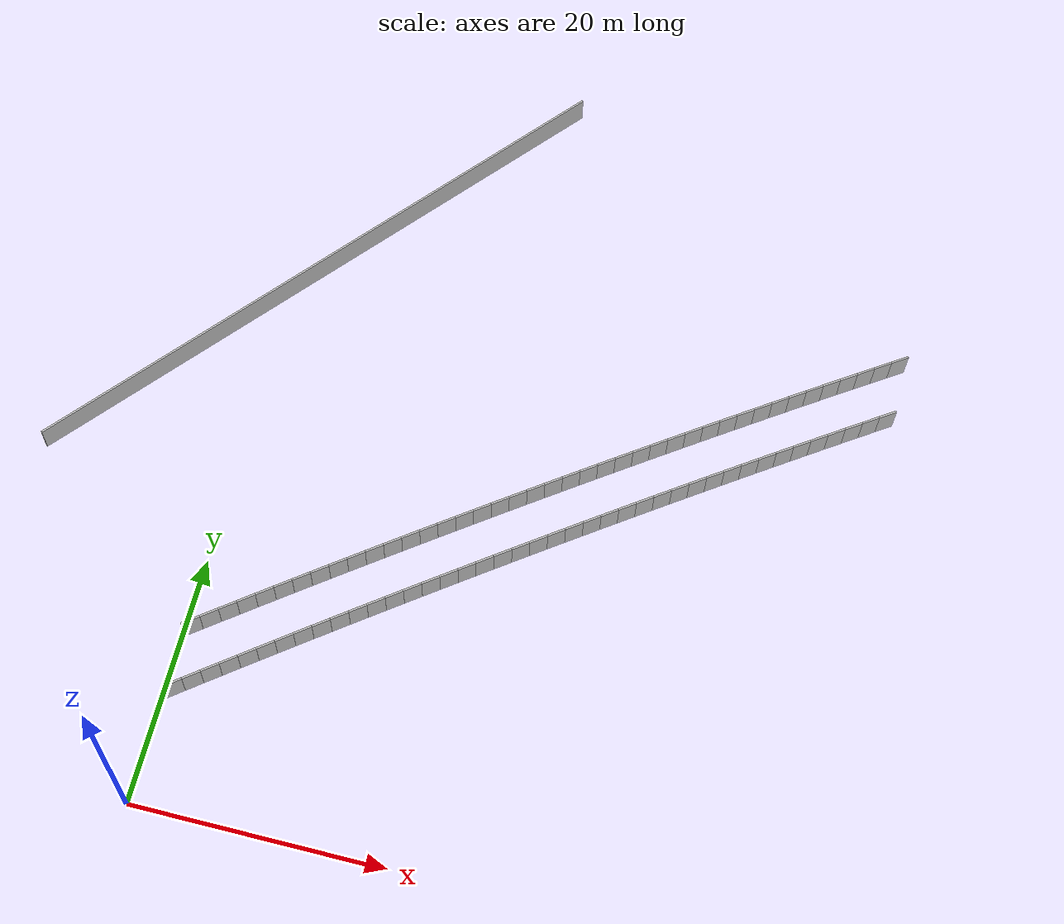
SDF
<?xml version="1.0" ?>
<sdf version="1.6">
  <model name="sps_1243">
    <pose frame="">0 0 0 0 -0 0</pose>
    <static>1</static>
    <self_collide>0</self_collide>
    <allow_auto_disable>0</allow_auto_disable>
    <link name="Wall222">
      <kinematic>0</kinematic>
      <gravity>1</gravity>
      <self_collide>0</self_collide>
      <collision name="collision">
        <geometry>
          <box>
            <size>53.8591 0.15 2.5</size>
          </box>
        </geometry>
        <pose frame="">0 0 0 0 -0 0</pose>
      </collision>
      <visual name="visual">
        <geometry>
          <box>
            <size>53.8591 0.15 2.5</size>
          </box>
        </geometry>
        <pose frame="">0 0 0 0 -0 0</pose>
        <cast_shadows>1</cast_shadows>
        <transparency>0.0</transparency>
      </visual>
      <pose frame="">1.70006 47.1975 1.25 0 -0 0.876505</pose>
    </link>
    <link name="Wall3242">
      <kinematic>0</kinematic>
      <gravity>1</gravity>
      <self_collide>0</self_collide>
      <collision name="collision">
        <geometry>
          <box>
            <size>1.49663 0.15 2.5</size>
          </box>
        </geometry>
        <pose frame="">0 0 0 0 -0 0</pose>
      </collision>
      <visual name="visual">
        <geometry>
          <box>
            <size>1.49663 0.15 2.5</size>
          </box>
        </geometry>
        <pose frame="">0 0 0 0 -0 0</pose>
        <cast_shadows>1</cast_shadows>
        <transparency>0.0</transparency>
      </visual>
      <pose frame="">49.1976 44.4365 1.25 0 0 -2.54182</pose>
    </link>
    <link name="Wall3243">
      <kinematic>0</kinematic>
      <gravity>1</gravity>
      <self_collide>0</self_collide>
      <collision name="collision">
        <geometry>
          <box>
            <size>1.49646 0.15 2.5</size>
          </box>
        </geometry>
        <pose frame="">0 0 0 0 -0 0</pose>
      </collision>
      <visual name="visual">
        <geometry>
          <box>
            <size>1.49646 0.15 2.5</size>
          </box>
        </geometry>
        <pose frame="">0 0 0 0 -0 0</pose>
        <cast_shadows>1</cast_shadows>
        <transparency>0.0</transparency>
      </visual>
      <pose frame="">47.9629 43.5907 1.25 0 0 -2.54011</pose>
    </link>
    <link name="Wall3244">
      <kinematic>0</kinematic>
      <gravity>1</gravity>
      <self_collide>0</self_collide>
      <collision name="collision">
        <geometry>
          <box>
            <size>1.49649 0.15 2.5</size>
          </box>
        </geometry>
        <pose frame="">0 0 0 0 -0 0</pose>
      </collision>
      <visual name="visual">
        <geometry>
          <box>
            <size>1.49649 0.15 2.5</size>
          </box>
        </geometry>
        <pose frame="">0 0 0 0 -0 0</pose>
        <cast_shadows>1</cast_shadows>
        <transparency>0.0</transparency>
      </visual>
      <pose frame="">46.7297 42.743 1.25 0 0 -2.53864</pose>
    </link>
    <link name="Wall3245">
      <kinematic>0</kinematic>
      <gravity>1</gravity>
      <self_collide>0</self_collide>
      <collision name="collision">
        <geometry>
          <box>
            <size>1.4964 0.15 2.5</size>
          </box>
        </geometry>
        <pose frame="">0 0 0 0 -0 0</pose>
      </collision>
      <visual name="visual">
        <geometry>
          <box>
            <size>1.4964 0.15 2.5</size>
          </box>
        </geometry>
        <pose frame="">0 0 0 0 -0 0</pose>
        <cast_shadows>1</cast_shadows>
        <transparency>0.0</transparency>
      </visual>
      <pose frame="">45.4979 41.8934 1.25 0 0 -2.53701</pose>
    </link>
    <link name="Wall3246">
      <kinematic>0</kinematic>
      <gravity>1</gravity>
      <self_collide>0</self_collide>
      <collision name="collision">
        <geometry>
          <box>
            <size>1.49653 0.15 2.5</size>
          </box>
        </geometry>
        <pose frame="">0 0 0 0 -0 0</pose>
      </collision>
      <visual name="visual">
        <geometry>
          <box>
            <size>1.49653 0.15 2.5</size>
          </box>
        </geometry>
        <pose frame="">0 0 0 0 -0 0</pose>
        <cast_shadows>1</cast_shadows>
        <transparency>0.0</transparency>
      </visual>
      <pose frame="">44.2673 41.0419 1.25 0 0 -2.53558</pose>
    </link>
    <link name="Wall3247">
      <kinematic>0</kinematic>
      <gravity>1</gravity>
      <self_collide>0</self_collide>
      <collision name="collision">
        <geometry>
          <box>
            <size>1.4964 0.15 2.5</size>
          </box>
        </geometry>
        <pose frame="">0 0 0 0 -0 0</pose>
      </collision>
      <visual name="visual">
        <geometry>
          <box>
            <size>1.4964 0.15 2.5</size>
          </box>
        </geometry>
        <pose frame="">0 0 0 0 -0 0</pose>
        <cast_shadows>1</cast_shadows>
        <transparency>0.0</transparency>
      </visual>
      <pose frame="">43.038 40.1884 1.25 0 0 -2.53378</pose>
    </link>
    <link name="Wall3248">
      <kinematic>0</kinematic>
      <gravity>1</gravity>
      <self_collide>0</self_collide>
      <collision name="collision">
        <geometry>
          <box>
            <size>1.49648 0.15 2.5</size>
          </box>
        </geometry>
        <pose frame="">0 0 0 0 -0 0</pose>
      </collision>
      <visual name="visual">
        <geometry>
          <box>
            <size>1.49648 0.15 2.5</size>
          </box>
        </geometry>
        <pose frame="">0 0 0 0 -0 0</pose>
        <cast_shadows>1</cast_shadows>
        <transparency>0.0</transparency>
      </visual>
      <pose frame="">41.8103 39.3329 1.25 0 0 -2.53228</pose>
    </link>
    <link name="Wall3249">
      <kinematic>0</kinematic>
      <gravity>1</gravity>
      <self_collide>0</self_collide>
      <collision name="collision">
        <geometry>
          <box>
            <size>1.4965 0.15 2.5</size>
          </box>
        </geometry>
        <pose frame="">0 0 0 0 -0 0</pose>
      </collision>
      <visual name="visual">
        <geometry>
          <box>
            <size>1.4965 0.15 2.5</size>
          </box>
        </geometry>
        <pose frame="">0 0 0 0 -0 0</pose>
        <cast_shadows>1</cast_shadows>
        <transparency>0.0</transparency>
      </visual>
      <pose frame="">40.5838 38.4755 1.25 0 0 -2.53069</pose>
    </link>
    <link name="Wall3250">
      <kinematic>0</kinematic>
      <gravity>1</gravity>
      <self_collide>0</self_collide>
      <collision name="collision">
        <geometry>
          <box>
            <size>1.49666 0.15 2.5</size>
          </box>
        </geometry>
        <pose frame="">0 0 0 0 -0 0</pose>
      </collision>
      <visual name="visual">
        <geometry>
          <box>
            <size>1.49666 0.15 2.5</size>
          </box>
        </geometry>
        <pose frame="">0 0 0 0 -0 0</pose>
        <cast_shadows>1</cast_shadows>
        <transparency>0.0</transparency>
      </visual>
      <pose frame="">39.3585 37.6161 1.25 0 0 -2.52912</pose>
    </link>
    <link name="Wall3251">
      <kinematic>0</kinematic>
      <gravity>1</gravity>
      <self_collide>0</self_collide>
      <collision name="collision">
        <geometry>
          <box>
            <size>1.49663 0.15 2.5</size>
          </box>
        </geometry>
        <pose frame="">0 0 0 0 -0 0</pose>
      </collision>
      <visual name="visual">
        <geometry>
          <box>
            <size>1.49663 0.15 2.5</size>
          </box>
        </geometry>
        <pose frame="">0 0 0 0 -0 0</pose>
        <cast_shadows>1</cast_shadows>
        <transparency>0.0</transparency>
      </visual>
      <pose frame="">38.1346 36.7547 1.25 0 0 -2.52752</pose>
    </link>
    <link name="Wall3252">
      <kinematic>0</kinematic>
      <gravity>1</gravity>
      <self_collide>0</self_collide>
      <collision name="collision">
        <geometry>
          <box>
            <size>1.49634 0.15 2.5</size>
          </box>
        </geometry>
        <pose frame="">0 0 0 0 -0 0</pose>
      </collision>
      <visual name="visual">
        <geometry>
          <box>
            <size>1.49634 0.15 2.5</size>
          </box>
        </geometry>
        <pose frame="">0 0 0 0 -0 0</pose>
        <cast_shadows>1</cast_shadows>
        <transparency>0.0</transparency>
      </visual>
      <pose frame="">36.9123 35.8914 1.25 0 0 -2.52588</pose>
    </link>
    <link name="Wall3253">
      <kinematic>0</kinematic>
      <gravity>1</gravity>
      <self_collide>0</self_collide>
      <collision name="collision">
        <geometry>
          <box>
            <size>1.49656 0.15 2.5</size>
          </box>
        </geometry>
        <pose frame="">0 0 0 0 -0 0</pose>
      </collision>
      <visual name="visual">
        <geometry>
          <box>
            <size>1.49656 0.15 2.5</size>
          </box>
        </geometry>
        <pose frame="">0 0 0 0 -0 0</pose>
        <cast_shadows>1</cast_shadows>
        <transparency>0.0</transparency>
      </visual>
      <pose frame="">35.6913 35.0262 1.25 0 0 -2.52433</pose>
    </link>
    <link name="Wall3254">
      <kinematic>0</kinematic>
      <gravity>1</gravity>
      <self_collide>0</self_collide>
      <collision name="collision">
        <geometry>
          <box>
            <size>1.49644 0.15 2.5</size>
          </box>
        </geometry>
        <pose frame="">0 0 0 0 -0 0</pose>
      </collision>
      <visual name="visual">
        <geometry>
          <box>
            <size>1.49644 0.15 2.5</size>
          </box>
        </geometry>
        <pose frame="">0 0 0 0 -0 0</pose>
        <cast_shadows>1</cast_shadows>
        <transparency>0.0</transparency>
      </visual>
      <pose frame="">34.4716 34.1591 1.25 0 0 -2.52283</pose>
    </link>
    <link name="Wall3255">
      <kinematic>0</kinematic>
      <gravity>1</gravity>
      <self_collide>0</self_collide>
      <collision name="collision">
        <geometry>
          <box>
            <size>1.49652 0.15 2.5</size>
          </box>
        </geometry>
        <pose frame="">0 0 0 0 -0 0</pose>
      </collision>
      <visual name="visual">
        <geometry>
          <box>
            <size>1.49652 0.15 2.5</size>
          </box>
        </geometry>
        <pose frame="">0 0 0 0 -0 0</pose>
        <cast_shadows>1</cast_shadows>
        <transparency>0.0</transparency>
      </visual>
      <pose frame="">33.2533 33.2901 1.25 0 0 -2.52121</pose>
    </link>
    <link name="Wall3256">
      <kinematic>0</kinematic>
      <gravity>1</gravity>
      <self_collide>0</self_collide>
      <collision name="collision">
        <geometry>
          <box>
            <size>1.4965 0.15 2.5</size>
          </box>
        </geometry>
        <pose frame="">0 0 0 0 -0 0</pose>
      </collision>
      <visual name="visual">
        <geometry>
          <box>
            <size>1.4965 0.15 2.5</size>
          </box>
        </geometry>
        <pose frame="">0 0 0 0 -0 0</pose>
        <cast_shadows>1</cast_shadows>
        <transparency>0.0</transparency>
      </visual>
      <pose frame="">32.0363 32.4191 1.25 0 0 -2.51955</pose>
    </link>
    <link name="Wall3257">
      <kinematic>0</kinematic>
      <gravity>1</gravity>
      <self_collide>0</self_collide>
      <collision name="collision">
        <geometry>
          <box>
            <size>1.49658 0.15 2.5</size>
          </box>
        </geometry>
        <pose frame="">0 0 0 0 -0 0</pose>
      </collision>
      <visual name="visual">
        <geometry>
          <box>
            <size>1.49658 0.15 2.5</size>
          </box>
        </geometry>
        <pose frame="">0 0 0 0 -0 0</pose>
        <cast_shadows>1</cast_shadows>
        <transparency>0.0</transparency>
      </visual>
      <pose frame="">30.8208 31.5462 1.25 0 0 -2.51808</pose>
    </link>
    <link name="Wall3258">
      <kinematic>0</kinematic>
      <gravity>1</gravity>
      <self_collide>0</self_collide>
      <collision name="collision">
        <geometry>
          <box>
            <size>1.49648 0.15 2.5</size>
          </box>
        </geometry>
        <pose frame="">0 0 0 0 -0 0</pose>
      </collision>
      <visual name="visual">
        <geometry>
          <box>
            <size>1.49648 0.15 2.5</size>
          </box>
        </geometry>
        <pose frame="">0 0 0 0 -0 0</pose>
        <cast_shadows>1</cast_shadows>
        <transparency>0.0</transparency>
      </visual>
      <pose frame="">29.6066 30.6714 1.25 0 0 -2.51642</pose>
    </link>
    <link name="Wall3259">
      <kinematic>0</kinematic>
      <gravity>1</gravity>
      <self_collide>0</self_collide>
      <collision name="collision">
        <geometry>
          <box>
            <size>1.49647 0.15 2.5</size>
          </box>
        </geometry>
        <pose frame="">0 0 0 0 -0 0</pose>
      </collision>
      <visual name="visual">
        <geometry>
          <box>
            <size>1.49647 0.15 2.5</size>
          </box>
        </geometry>
        <pose frame="">0 0 0 0 -0 0</pose>
        <cast_shadows>1</cast_shadows>
        <transparency>0.0</transparency>
      </visual>
      <pose frame="">28.3939 29.7946 1.25 0 0 -2.51476</pose>
    </link>
    <link name="Wall3260">
      <kinematic>0</kinematic>
      <gravity>1</gravity>
      <self_collide>0</self_collide>
      <collision name="collision">
        <geometry>
          <box>
            <size>1.49657 0.15 2.5</size>
          </box>
        </geometry>
        <pose frame="">0 0 0 0 -0 0</pose>
      </collision>
      <visual name="visual">
        <geometry>
          <box>
            <size>1.49657 0.15 2.5</size>
          </box>
        </geometry>
        <pose frame="">0 0 0 0 -0 0</pose>
        <cast_shadows>1</cast_shadows>
        <transparency>0.0</transparency>
      </visual>
      <pose frame="">27.1825 28.9159 1.25 0 0 -2.51335</pose>
    </link>
    <link name="Wall3261">
      <kinematic>0</kinematic>
      <gravity>1</gravity>
      <self_collide>0</self_collide>
      <collision name="collision">
        <geometry>
          <box>
            <size>1.49662 0.15 2.5</size>
          </box>
        </geometry>
        <pose frame="">0 0 0 0 -0 0</pose>
      </collision>
      <visual name="visual">
        <geometry>
          <box>
            <size>1.49662 0.15 2.5</size>
          </box>
        </geometry>
        <pose frame="">0 0 0 0 -0 0</pose>
        <cast_shadows>1</cast_shadows>
        <transparency>0.0</transparency>
      </visual>
      <pose frame="">25.9723 28.0353 1.25 0 0 -2.5117</pose>
    </link>
    <link name="Wall3262">
      <kinematic>0</kinematic>
      <gravity>1</gravity>
      <self_collide>0</self_collide>
      <collision name="collision">
        <geometry>
          <box>
            <size>1.49637 0.15 2.5</size>
          </box>
        </geometry>
        <pose frame="">0 0 0 0 -0 0</pose>
      </collision>
      <visual name="visual">
        <geometry>
          <box>
            <size>1.49637 0.15 2.5</size>
          </box>
        </geometry>
        <pose frame="">0 0 0 0 -0 0</pose>
        <cast_shadows>1</cast_shadows>
        <transparency>0.0</transparency>
      </visual>
      <pose frame="">24.7638 27.1528 1.25 0 0 -2.51007</pose>
    </link>
    <link name="Wall3263">
      <kinematic>0</kinematic>
      <gravity>1</gravity>
      <self_collide>0</self_collide>
      <collision name="collision">
        <geometry>
          <box>
            <size>1.49659 0.15 2.5</size>
          </box>
        </geometry>
        <pose frame="">0 0 0 0 -0 0</pose>
      </collision>
      <visual name="visual">
        <geometry>
          <box>
            <size>1.49659 0.15 2.5</size>
          </box>
        </geometry>
        <pose frame="">0 0 0 0 -0 0</pose>
        <cast_shadows>1</cast_shadows>
        <transparency>0.0</transparency>
      </visual>
      <pose frame="">23.5566 26.2684 1.25 0 0 -2.50856</pose>
    </link>
    <link name="Wall3264">
      <kinematic>0</kinematic>
      <gravity>1</gravity>
      <self_collide>0</self_collide>
      <collision name="collision">
        <geometry>
          <box>
            <size>1.4964 0.15 2.5</size>
          </box>
        </geometry>
        <pose frame="">0 0 0 0 -0 0</pose>
      </collision>
      <visual name="visual">
        <geometry>
          <box>
            <size>1.4964 0.15 2.5</size>
          </box>
        </geometry>
        <pose frame="">0 0 0 0 -0 0</pose>
        <cast_shadows>1</cast_shadows>
        <transparency>0.0</transparency>
      </visual>
      <pose frame="">22.3508 25.3821 1.25 0 0 -2.50694</pose>
    </link>
    <link name="Wall3265">
      <kinematic>0</kinematic>
      <gravity>1</gravity>
      <self_collide>0</self_collide>
      <collision name="collision">
        <geometry>
          <box>
            <size>1.49646 0.15 2.5</size>
          </box>
        </geometry>
        <pose frame="">0 0 0 0 -0 0</pose>
      </collision>
      <visual name="visual">
        <geometry>
          <box>
            <size>1.49646 0.15 2.5</size>
          </box>
        </geometry>
        <pose frame="">0 0 0 0 -0 0</pose>
        <cast_shadows>1</cast_shadows>
        <transparency>0.0</transparency>
      </visual>
      <pose frame="">21.1464 24.4939 1.25 0 0 -2.5053</pose>
    </link>
    <link name="Wall3266">
      <kinematic>0</kinematic>
      <gravity>1</gravity>
      <self_collide>0</self_collide>
      <collision name="collision">
        <geometry>
          <box>
            <size>1.49664 0.15 2.5</size>
          </box>
        </geometry>
        <pose frame="">0 0 0 0 -0 0</pose>
      </collision>
      <visual name="visual">
        <geometry>
          <box>
            <size>1.49664 0.15 2.5</size>
          </box>
        </geometry>
        <pose frame="">0 0 0 0 -0 0</pose>
        <cast_shadows>1</cast_shadows>
        <transparency>0.0</transparency>
      </visual>
      <pose frame="">19.9434 23.6037 1.25 0 0 -2.50377</pose>
    </link>
    <link name="Wall3267">
      <kinematic>0</kinematic>
      <gravity>1</gravity>
      <self_collide>0</self_collide>
      <collision name="collision">
        <geometry>
          <box>
            <size>1.49635 0.15 2.5</size>
          </box>
        </geometry>
        <pose frame="">0 0 0 0 -0 0</pose>
      </collision>
      <visual name="visual">
        <geometry>
          <box>
            <size>1.49635 0.15 2.5</size>
          </box>
        </geometry>
        <pose frame="">0 0 0 0 -0 0</pose>
        <cast_shadows>1</cast_shadows>
        <transparency>0.0</transparency>
      </visual>
      <pose frame="">18.7418 22.7117 1.25 0 0 -2.50225</pose>
    </link>
    <link name="Wall3268">
      <kinematic>0</kinematic>
      <gravity>1</gravity>
      <self_collide>0</self_collide>
      <collision name="collision">
        <geometry>
          <box>
            <size>1.49639 0.15 2.5</size>
          </box>
        </geometry>
        <pose frame="">0 0 0 0 -0 0</pose>
      </collision>
      <visual name="visual">
        <geometry>
          <box>
            <size>1.49639 0.15 2.5</size>
          </box>
        </geometry>
        <pose frame="">0 0 0 0 -0 0</pose>
        <cast_shadows>1</cast_shadows>
        <transparency>0.0</transparency>
      </visual>
      <pose frame="">17.5417 21.8179 1.25 0 0 -2.50064</pose>
    </link>
    <link name="Wall3269">
      <kinematic>0</kinematic>
      <gravity>1</gravity>
      <self_collide>0</self_collide>
      <collision name="collision">
        <geometry>
          <box>
            <size>1.49662 0.15 2.5</size>
          </box>
        </geometry>
        <pose frame="">0 0 0 0 -0 0</pose>
      </collision>
      <visual name="visual">
        <geometry>
          <box>
            <size>1.49662 0.15 2.5</size>
          </box>
        </geometry>
        <pose frame="">0 0 0 0 -0 0</pose>
        <cast_shadows>1</cast_shadows>
        <transparency>0.0</transparency>
      </visual>
      <pose frame="">16.3429 20.9221 1.25 0 0 -2.49908</pose>
    </link>
    <link name="Wall3270">
      <kinematic>0</kinematic>
      <gravity>1</gravity>
      <self_collide>0</self_collide>
      <collision name="collision">
        <geometry>
          <box>
            <size>1.49656 0.15 2.5</size>
          </box>
        </geometry>
        <pose frame="">0 0 0 0 -0 0</pose>
      </collision>
      <visual name="visual">
        <geometry>
          <box>
            <size>1.49656 0.15 2.5</size>
          </box>
        </geometry>
        <pose frame="">0 0 0 0 -0 0</pose>
        <cast_shadows>1</cast_shadows>
        <transparency>0.0</transparency>
      </visual>
      <pose frame="">15.1456 20.0243 1.25 0 0 -2.49737</pose>
    </link>
    <link name="Wall3271">
      <kinematic>0</kinematic>
      <gravity>1</gravity>
      <self_collide>0</self_collide>
      <collision name="collision">
        <geometry>
          <box>
            <size>1.49654 0.15 2.5</size>
          </box>
        </geometry>
        <pose frame="">0 0 0 0 -0 0</pose>
      </collision>
      <visual name="visual">
        <geometry>
          <box>
            <size>1.49654 0.15 2.5</size>
          </box>
        </geometry>
        <pose frame="">0 0 0 0 -0 0</pose>
        <cast_shadows>1</cast_shadows>
        <transparency>0.0</transparency>
      </visual>
      <pose frame="">13.9497 19.1246 1.25 0 0 -2.49582</pose>
    </link>
    <link name="Wall3272">
      <kinematic>0</kinematic>
      <gravity>1</gravity>
      <self_collide>0</self_collide>
      <collision name="collision">
        <geometry>
          <box>
            <size>1.49653 0.15 2.5</size>
          </box>
        </geometry>
        <pose frame="">0 0 0 0 -0 0</pose>
      </collision>
      <visual name="visual">
        <geometry>
          <box>
            <size>1.49653 0.15 2.5</size>
          </box>
        </geometry>
        <pose frame="">0 0 0 0 -0 0</pose>
        <cast_shadows>1</cast_shadows>
        <transparency>0.0</transparency>
      </visual>
      <pose frame="">12.7551 18.2231 1.25 0 0 -2.49434</pose>
    </link>
    <link name="Wall3273">
      <kinematic>0</kinematic>
      <gravity>1</gravity>
      <self_collide>0</self_collide>
      <collision name="collision">
        <geometry>
          <box>
            <size>1.4964 0.15 2.5</size>
          </box>
        </geometry>
        <pose frame="">0 0 0 0 -0 0</pose>
      </collision>
      <visual name="visual">
        <geometry>
          <box>
            <size>1.4964 0.15 2.5</size>
          </box>
        </geometry>
        <pose frame="">0 0 0 0 -0 0</pose>
        <cast_shadows>1</cast_shadows>
        <transparency>0.0</transparency>
      </visual>
      <pose frame="">11.5621 17.3197 1.25 0 0 -2.49263</pose>
    </link>
    <link name="Wall3274">
      <kinematic>0</kinematic>
      <gravity>1</gravity>
      <self_collide>0</self_collide>
      <collision name="collision">
        <geometry>
          <box>
            <size>1.49653 0.15 2.5</size>
          </box>
        </geometry>
        <pose frame="">0 0 0 0 -0 0</pose>
      </collision>
      <visual name="visual">
        <geometry>
          <box>
            <size>1.49653 0.15 2.5</size>
          </box>
        </geometry>
        <pose frame="">0 0 0 0 -0 0</pose>
        <cast_shadows>1</cast_shadows>
        <transparency>0.0</transparency>
      </visual>
      <pose frame="">10.3706 16.4143 1.25 0 0 -2.49096</pose>
    </link>
    <link name="Wall3275">
      <kinematic>0</kinematic>
      <gravity>1</gravity>
      <self_collide>0</self_collide>
      <collision name="collision">
        <geometry>
          <box>
            <size>1.49634 0.15 2.5</size>
          </box>
        </geometry>
        <pose frame="">0 0 0 0 -0 0</pose>
      </collision>
      <visual name="visual">
        <geometry>
          <box>
            <size>1.49634 0.15 2.5</size>
          </box>
        </geometry>
        <pose frame="">0 0 0 0 -0 0</pose>
        <cast_shadows>1</cast_shadows>
        <transparency>0.0</transparency>
      </visual>
      <pose frame="">9.18053 15.5071 1.25 0 0 -2.48958</pose>
    </link>
    <link name="Wall3276">
      <kinematic>0</kinematic>
      <gravity>1</gravity>
      <self_collide>0</self_collide>
      <collision name="collision">
        <geometry>
          <box>
            <size>1.49649 0.15 2.5</size>
          </box>
        </geometry>
        <pose frame="">0 0 0 0 -0 0</pose>
      </collision>
      <visual name="visual">
        <geometry>
          <box>
            <size>1.49649 0.15 2.5</size>
          </box>
        </geometry>
        <pose frame="">0 0 0 0 -0 0</pose>
        <cast_shadows>1</cast_shadows>
        <transparency>0.0</transparency>
      </visual>
      <pose frame="">7.99184 14.5981 1.25 0 0 -2.48791</pose>
    </link>
    <link name="Wall3277">
      <kinematic>0</kinematic>
      <gravity>1</gravity>
      <self_collide>0</self_collide>
      <collision name="collision">
        <geometry>
          <box>
            <size>1.49671 0.15 2.5</size>
          </box>
        </geometry>
        <pose frame="">0 0 0 0 -0 0</pose>
      </collision>
      <visual name="visual">
        <geometry>
          <box>
            <size>1.49671 0.15 2.5</size>
          </box>
        </geometry>
        <pose frame="">0 0 0 0 -0 0</pose>
        <cast_shadows>1</cast_shadows>
        <transparency>0.0</transparency>
      </visual>
      <pose frame="">6.80447 13.6871 1.25 0 0 -2.48638</pose>
    </link>
    <link name="Wall3278">
      <kinematic>0</kinematic>
      <gravity>1</gravity>
      <self_collide>0</self_collide>
      <collision name="collision">
        <geometry>
          <box>
            <size>1.49642 0.15 2.5</size>
          </box>
        </geometry>
        <pose frame="">0 0 0 0 -0 0</pose>
      </collision>
      <visual name="visual">
        <geometry>
          <box>
            <size>1.49642 0.15 2.5</size>
          </box>
        </geometry>
        <pose frame="">0 0 0 0 -0 0</pose>
        <cast_shadows>1</cast_shadows>
        <transparency>0.0</transparency>
      </visual>
      <pose frame="">5.61858 12.7742 1.25 0 0 -2.48469</pose>
    </link>
    <link name="Wall3279">
      <kinematic>0</kinematic>
      <gravity>1</gravity>
      <self_collide>0</self_collide>
      <collision name="collision">
        <geometry>
          <box>
            <size>1.49644 0.15 2.5</size>
          </box>
        </geometry>
        <pose frame="">0 0 0 0 -0 0</pose>
      </collision>
      <visual name="visual">
        <geometry>
          <box>
            <size>1.49644 0.15 2.5</size>
          </box>
        </geometry>
        <pose frame="">0 0 0 0 -0 0</pose>
        <cast_shadows>1</cast_shadows>
        <transparency>0.0</transparency>
      </visual>
      <pose frame="">4.43426 11.8595 1.25 0 0 -2.4832</pose>
    </link>
    <link name="Wall3280">
      <kinematic>0</kinematic>
      <gravity>1</gravity>
      <self_collide>0</self_collide>
      <collision name="collision">
        <geometry>
          <box>
            <size>1.49652 0.15 2.5</size>
          </box>
        </geometry>
        <pose frame="">0 0 0 0 -0 0</pose>
      </collision>
      <visual name="visual">
        <geometry>
          <box>
            <size>1.49652 0.15 2.5</size>
          </box>
        </geometry>
        <pose frame="">0 0 0 0 -0 0</pose>
        <cast_shadows>1</cast_shadows>
        <transparency>0.0</transparency>
      </visual>
      <pose frame="">3.25133 10.9429 1.25 0 0 -2.48154</pose>
    </link>
    <link name="Wall3281">
      <kinematic>0</kinematic>
      <gravity>1</gravity>
      <self_collide>0</self_collide>
      <collision name="collision">
        <geometry>
          <box>
            <size>1.4965 0.15 2.5</size>
          </box>
        </geometry>
        <pose frame="">0 0 0 0 -0 0</pose>
      </collision>
      <visual name="visual">
        <geometry>
          <box>
            <size>1.4965 0.15 2.5</size>
          </box>
        </geometry>
        <pose frame="">0 0 0 0 -0 0</pose>
        <cast_shadows>1</cast_shadows>
        <transparency>0.0</transparency>
      </visual>
      <pose frame="">2.06994 10.0243 1.25 0 0 -2.47983</pose>
    </link>
    <link name="Wall3282">
      <kinematic>0</kinematic>
      <gravity>1</gravity>
      <self_collide>0</self_collide>
      <collision name="collision">
        <geometry>
          <box>
            <size>1.49652 0.15 2.5</size>
          </box>
        </geometry>
        <pose frame="">0 0 0 0 -0 0</pose>
      </collision>
      <visual name="visual">
        <geometry>
          <box>
            <size>1.49652 0.15 2.5</size>
          </box>
        </geometry>
        <pose frame="">0 0 0 0 -0 0</pose>
        <cast_shadows>1</cast_shadows>
        <transparency>0.0</transparency>
      </visual>
      <pose frame="">0.889945 9.10387 1.25 0 0 -2.47849</pose>
    </link>
    <link name="Wall5851">
      <kinematic>0</kinematic>
      <gravity>1</gravity>
      <self_collide>0</self_collide>
      <collision name="collision">
        <geometry>
          <box>
            <size>1.50309 0.15 2.5</size>
          </box>
        </geometry>
        <pose frame="">0 0 0 0 -0 0</pose>
      </collision>
      <visual name="visual">
        <geometry>
          <box>
            <size>1.50309 0.15 2.5</size>
          </box>
        </geometry>
        <pose frame="">0 0 0 0 -0 0</pose>
        <cast_shadows>1</cast_shadows>
        <transparency>0.0</transparency>
      </visual>
      <pose frame="">49.335 49.5402 1.25 0 0 -2.5449</pose>
    </link>
    <link name="Wall5852">
      <kinematic>0</kinematic>
      <gravity>1</gravity>
      <self_collide>0</self_collide>
      <collision name="collision">
        <geometry>
          <box>
            <size>1.50308 0.15 2.5</size>
          </box>
        </geometry>
        <pose frame="">0 0 0 0 -0 0</pose>
      </collision>
      <visual name="visual">
        <geometry>
          <box>
            <size>1.50308 0.15 2.5</size>
          </box>
        </geometry>
        <pose frame="">0 0 0 0 -0 0</pose>
        <cast_shadows>1</cast_shadows>
        <transparency>0.0</transparency>
      </visual>
      <pose frame="">48.0923 48.6946 1.25 0 0 -2.54332</pose>
    </link>
    <link name="Wall5853">
      <kinematic>0</kinematic>
      <gravity>1</gravity>
      <self_collide>0</self_collide>
      <collision name="collision">
        <geometry>
          <box>
            <size>1.50309 0.15 2.5</size>
          </box>
        </geometry>
        <pose frame="">0 0 0 0 -0 0</pose>
      </collision>
      <visual name="visual">
        <geometry>
          <box>
            <size>1.50309 0.15 2.5</size>
          </box>
        </geometry>
        <pose frame="">0 0 0 0 -0 0</pose>
        <cast_shadows>1</cast_shadows>
        <transparency>0.0</transparency>
      </visual>
      <pose frame="">46.851 47.847 1.25 0 0 -2.54165</pose>
    </link>
    <link name="Wall5854">
      <kinematic>0</kinematic>
      <gravity>1</gravity>
      <self_collide>0</self_collide>
      <collision name="collision">
        <geometry>
          <box>
            <size>1.50313 0.15 2.5</size>
          </box>
        </geometry>
        <pose frame="">0 0 0 0 -0 0</pose>
      </collision>
      <visual name="visual">
        <geometry>
          <box>
            <size>1.50313 0.15 2.5</size>
          </box>
        </geometry>
        <pose frame="">0 0 0 0 -0 0</pose>
        <cast_shadows>1</cast_shadows>
        <transparency>0.0</transparency>
      </visual>
      <pose frame="">45.611 46.9975 1.25 0 0 -2.54024</pose>
    </link>
    <link name="Wall5855">
      <kinematic>0</kinematic>
      <gravity>1</gravity>
      <self_collide>0</self_collide>
      <collision name="collision">
        <geometry>
          <box>
            <size>1.50306 0.15 2.5</size>
          </box>
        </geometry>
        <pose frame="">0 0 0 0 -0 0</pose>
      </collision>
      <visual name="visual">
        <geometry>
          <box>
            <size>1.50306 0.15 2.5</size>
          </box>
        </geometry>
        <pose frame="">0 0 0 0 -0 0</pose>
        <cast_shadows>1</cast_shadows>
        <transparency>0.0</transparency>
      </visual>
      <pose frame="">44.3722 46.1461 1.25 0 0 -2.53859</pose>
    </link>
    <link name="Wall5856">
      <kinematic>0</kinematic>
      <gravity>1</gravity>
      <self_collide>0</self_collide>
      <collision name="collision">
        <geometry>
          <box>
            <size>1.50291 0.15 2.5</size>
          </box>
        </geometry>
        <pose frame="">0 0 0 0 -0 0</pose>
      </collision>
      <visual name="visual">
        <geometry>
          <box>
            <size>1.50291 0.15 2.5</size>
          </box>
        </geometry>
        <pose frame="">0 0 0 0 -0 0</pose>
        <cast_shadows>1</cast_shadows>
        <transparency>0.0</transparency>
      </visual>
      <pose frame="">43.135 45.2928 1.25 0 0 -2.53709</pose>
    </link>
    <link name="Wall5857">
      <kinematic>0</kinematic>
      <gravity>1</gravity>
      <self_collide>0</self_collide>
      <collision name="collision">
        <geometry>
          <box>
            <size>1.50321 0.15 2.5</size>
          </box>
        </geometry>
        <pose frame="">0 0 0 0 -0 0</pose>
      </collision>
      <visual name="visual">
        <geometry>
          <box>
            <size>1.50321 0.15 2.5</size>
          </box>
        </geometry>
        <pose frame="">0 0 0 0 -0 0</pose>
        <cast_shadows>1</cast_shadows>
        <transparency>0.0</transparency>
      </visual>
      <pose frame="">41.899 44.4375 1.25 0 0 -2.53545</pose>
    </link>
    <link name="Wall5858">
      <kinematic>0</kinematic>
      <gravity>1</gravity>
      <self_collide>0</self_collide>
      <collision name="collision">
        <geometry>
          <box>
            <size>1.50305 0.15 2.5</size>
          </box>
        </geometry>
        <pose frame="">0 0 0 0 -0 0</pose>
      </collision>
      <visual name="visual">
        <geometry>
          <box>
            <size>1.50305 0.15 2.5</size>
          </box>
        </geometry>
        <pose frame="">0 0 0 0 -0 0</pose>
        <cast_shadows>1</cast_shadows>
        <transparency>0.0</transparency>
      </visual>
      <pose frame="">40.6644 43.5801 1.25 0 0 -2.53374</pose>
    </link>
    <link name="Wall5859">
      <kinematic>0</kinematic>
      <gravity>1</gravity>
      <self_collide>0</self_collide>
      <collision name="collision">
        <geometry>
          <box>
            <size>1.5031 0.15 2.5</size>
          </box>
        </geometry>
        <pose frame="">0 0 0 0 -0 0</pose>
      </collision>
      <visual name="visual">
        <geometry>
          <box>
            <size>1.5031 0.15 2.5</size>
          </box>
        </geometry>
        <pose frame="">0 0 0 0 -0 0</pose>
        <cast_shadows>1</cast_shadows>
        <transparency>0.0</transparency>
      </visual>
      <pose frame="">39.4311 42.7208 1.25 0 0 -2.53228</pose>
    </link>
    <link name="Wall5860">
      <kinematic>0</kinematic>
      <gravity>1</gravity>
      <self_collide>0</self_collide>
      <collision name="collision">
        <geometry>
          <box>
            <size>1.50307 0.15 2.5</size>
          </box>
        </geometry>
        <pose frame="">0 0 0 0 -0 0</pose>
      </collision>
      <visual name="visual">
        <geometry>
          <box>
            <size>1.50307 0.15 2.5</size>
          </box>
        </geometry>
        <pose frame="">0 0 0 0 -0 0</pose>
        <cast_shadows>1</cast_shadows>
        <transparency>0.0</transparency>
      </visual>
      <pose frame="">38.1992 41.8596 1.25 0 0 -2.53068</pose>
    </link>
    <link name="Wall5861">
      <kinematic>0</kinematic>
      <gravity>1</gravity>
      <self_collide>0</self_collide>
      <collision name="collision">
        <geometry>
          <box>
            <size>1.50312 0.15 2.5</size>
          </box>
        </geometry>
        <pose frame="">0 0 0 0 -0 0</pose>
      </collision>
      <visual name="visual">
        <geometry>
          <box>
            <size>1.50312 0.15 2.5</size>
          </box>
        </geometry>
        <pose frame="">0 0 0 0 -0 0</pose>
        <cast_shadows>1</cast_shadows>
        <transparency>0.0</transparency>
      </visual>
      <pose frame="">36.9687 40.9965 1.25 0 0 -2.52922</pose>
    </link>
    <link name="Wall5862">
      <kinematic>0</kinematic>
      <gravity>1</gravity>
      <self_collide>0</self_collide>
      <collision name="collision">
        <geometry>
          <box>
            <size>1.50305 0.15 2.5</size>
          </box>
        </geometry>
        <pose frame="">0 0 0 0 -0 0</pose>
      </collision>
      <visual name="visual">
        <geometry>
          <box>
            <size>1.50305 0.15 2.5</size>
          </box>
        </geometry>
        <pose frame="">0 0 0 0 -0 0</pose>
        <cast_shadows>1</cast_shadows>
        <transparency>0.0</transparency>
      </visual>
      <pose frame="">35.7395 40.1314 1.25 0 0 -2.52745</pose>
    </link>
    <link name="Wall5863">
      <kinematic>0</kinematic>
      <gravity>1</gravity>
      <self_collide>0</self_collide>
      <collision name="collision">
        <geometry>
          <box>
            <size>1.5032 0.15 2.5</size>
          </box>
        </geometry>
        <pose frame="">0 0 0 0 -0 0</pose>
      </collision>
      <visual name="visual">
        <geometry>
          <box>
            <size>1.5032 0.15 2.5</size>
          </box>
        </geometry>
        <pose frame="">0 0 0 0 -0 0</pose>
        <cast_shadows>1</cast_shadows>
        <transparency>0.0</transparency>
      </visual>
      <pose frame="">34.5116 39.2643 1.25 0 0 -2.52597</pose>
    </link>
    <link name="Wall5864">
      <kinematic>0</kinematic>
      <gravity>1</gravity>
      <self_collide>0</self_collide>
      <collision name="collision">
        <geometry>
          <box>
            <size>1.50313 0.15 2.5</size>
          </box>
        </geometry>
        <pose frame="">0 0 0 0 -0 0</pose>
      </collision>
      <visual name="visual">
        <geometry>
          <box>
            <size>1.50313 0.15 2.5</size>
          </box>
        </geometry>
        <pose frame="">0 0 0 0 -0 0</pose>
        <cast_shadows>1</cast_shadows>
        <transparency>0.0</transparency>
      </visual>
      <pose frame="">33.2851 38.3953 1.25 0 0 -2.52435</pose>
    </link>
    <link name="Wall5865">
      <kinematic>0</kinematic>
      <gravity>1</gravity>
      <self_collide>0</self_collide>
      <collision name="collision">
        <geometry>
          <box>
            <size>1.5032 0.15 2.5</size>
          </box>
        </geometry>
        <pose frame="">0 0 0 0 -0 0</pose>
      </collision>
      <visual name="visual">
        <geometry>
          <box>
            <size>1.5032 0.15 2.5</size>
          </box>
        </geometry>
        <pose frame="">0 0 0 0 -0 0</pose>
        <cast_shadows>1</cast_shadows>
        <transparency>0.0</transparency>
      </visual>
      <pose frame="">32.0601 37.5243 1.25 0 0 -2.52274</pose>
    </link>
    <link name="Wall5866">
      <kinematic>0</kinematic>
      <gravity>1</gravity>
      <self_collide>0</self_collide>
      <collision name="collision">
        <geometry>
          <box>
            <size>1.50289 0.15 2.5</size>
          </box>
        </geometry>
        <pose frame="">0 0 0 0 -0 0</pose>
      </collision>
      <visual name="visual">
        <geometry>
          <box>
            <size>1.50289 0.15 2.5</size>
          </box>
        </geometry>
        <pose frame="">0 0 0 0 -0 0</pose>
        <cast_shadows>1</cast_shadows>
        <transparency>0.0</transparency>
      </visual>
      <pose frame="">30.8364 36.6514 1.25 0 0 -2.52114</pose>
    </link>
    <link name="Wall5867">
      <kinematic>0</kinematic>
      <gravity>1</gravity>
      <self_collide>0</self_collide>
      <collision name="collision">
        <geometry>
          <box>
            <size>1.50312 0.15 2.5</size>
          </box>
        </geometry>
        <pose frame="">0 0 0 0 -0 0</pose>
      </collision>
      <visual name="visual">
        <geometry>
          <box>
            <size>1.50312 0.15 2.5</size>
          </box>
        </geometry>
        <pose frame="">0 0 0 0 -0 0</pose>
        <cast_shadows>1</cast_shadows>
        <transparency>0.0</transparency>
      </visual>
      <pose frame="">29.6142 35.7766 1.25 0 0 -2.51961</pose>
    </link>
    <link name="Wall5868">
      <kinematic>0</kinematic>
      <gravity>1</gravity>
      <self_collide>0</self_collide>
      <collision name="collision">
        <geometry>
          <box>
            <size>1.50315 0.15 2.5</size>
          </box>
        </geometry>
        <pose frame="">0 0 0 0 -0 0</pose>
      </collision>
      <visual name="visual">
        <geometry>
          <box>
            <size>1.50315 0.15 2.5</size>
          </box>
        </geometry>
        <pose frame="">0 0 0 0 -0 0</pose>
        <cast_shadows>1</cast_shadows>
        <transparency>0.0</transparency>
      </visual>
      <pose frame="">28.3933 34.8998 1.25 0 0 -2.51797</pose>
    </link>
    <link name="Wall5869">
      <kinematic>0</kinematic>
      <gravity>1</gravity>
      <self_collide>0</self_collide>
      <collision name="collision">
        <geometry>
          <box>
            <size>1.503 0.15 2.5</size>
          </box>
        </geometry>
        <pose frame="">0 0 0 0 -0 0</pose>
      </collision>
      <visual name="visual">
        <geometry>
          <box>
            <size>1.503 0.15 2.5</size>
          </box>
        </geometry>
        <pose frame="">0 0 0 0 -0 0</pose>
        <cast_shadows>1</cast_shadows>
        <transparency>0.0</transparency>
      </visual>
      <pose frame="">27.1739 34.0211 1.25 0 0 -2.51645</pose>
    </link>
    <link name="Wall5870">
      <kinematic>0</kinematic>
      <gravity>1</gravity>
      <self_collide>0</self_collide>
      <collision name="collision">
        <geometry>
          <box>
            <size>1.50323 0.15 2.5</size>
          </box>
        </geometry>
        <pose frame="">0 0 0 0 -0 0</pose>
      </collision>
      <visual name="visual">
        <geometry>
          <box>
            <size>1.50323 0.15 2.5</size>
          </box>
        </geometry>
        <pose frame="">0 0 0 0 -0 0</pose>
        <cast_shadows>1</cast_shadows>
        <transparency>0.0</transparency>
      </visual>
      <pose frame="">25.9558 33.1404 1.25 0 0 -2.51471</pose>
    </link>
    <link name="Wall5871">
      <kinematic>0</kinematic>
      <gravity>1</gravity>
      <self_collide>0</self_collide>
      <collision name="collision">
        <geometry>
          <box>
            <size>1.50299 0.15 2.5</size>
          </box>
        </geometry>
        <pose frame="">0 0 0 0 -0 0</pose>
      </collision>
      <visual name="visual">
        <geometry>
          <box>
            <size>1.50299 0.15 2.5</size>
          </box>
        </geometry>
        <pose frame="">0 0 0 0 -0 0</pose>
        <cast_shadows>1</cast_shadows>
        <transparency>0.0</transparency>
      </visual>
      <pose frame="">24.7391 32.2578 1.25 0 0 -2.51334</pose>
    </link>
    <link name="Wall5872">
      <kinematic>0</kinematic>
      <gravity>1</gravity>
      <self_collide>0</self_collide>
      <collision name="collision">
        <geometry>
          <box>
            <size>1.50308 0.15 2.5</size>
          </box>
        </geometry>
        <pose frame="">0 0 0 0 -0 0</pose>
      </collision>
      <visual name="visual">
        <geometry>
          <box>
            <size>1.50308 0.15 2.5</size>
          </box>
        </geometry>
        <pose frame="">0 0 0 0 -0 0</pose>
        <cast_shadows>1</cast_shadows>
        <transparency>0.0</transparency>
      </visual>
      <pose frame="">23.5238 31.3734 1.25 0 0 -2.51167</pose>
    </link>
    <link name="Wall5873">
      <kinematic>0</kinematic>
      <gravity>1</gravity>
      <self_collide>0</self_collide>
      <collision name="collision">
        <geometry>
          <box>
            <size>1.5031 0.15 2.5</size>
          </box>
        </geometry>
        <pose frame="">0 0 0 0 -0 0</pose>
      </collision>
      <visual name="visual">
        <geometry>
          <box>
            <size>1.5031 0.15 2.5</size>
          </box>
        </geometry>
        <pose frame="">0 0 0 0 -0 0</pose>
        <cast_shadows>1</cast_shadows>
        <transparency>0.0</transparency>
      </visual>
      <pose frame="">22.3099 30.487 1.25 0 0 -2.51007</pose>
    </link>
    <link name="Wall5874">
      <kinematic>0</kinematic>
      <gravity>1</gravity>
      <self_collide>0</self_collide>
      <collision name="collision">
        <geometry>
          <box>
            <size>1.50305 0.15 2.5</size>
          </box>
        </geometry>
        <pose frame="">0 0 0 0 -0 0</pose>
      </collision>
      <visual name="visual">
        <geometry>
          <box>
            <size>1.50305 0.15 2.5</size>
          </box>
        </geometry>
        <pose frame="">0 0 0 0 -0 0</pose>
        <cast_shadows>1</cast_shadows>
        <transparency>0.0</transparency>
      </visual>
      <pose frame="">21.0974 29.5987 1.25 0 0 -2.50854</pose>
    </link>
    <link name="Wall5875">
      <kinematic>0</kinematic>
      <gravity>1</gravity>
      <self_collide>0</self_collide>
      <collision name="collision">
        <geometry>
          <box>
            <size>1.50312 0.15 2.5</size>
          </box>
        </geometry>
        <pose frame="">0 0 0 0 -0 0</pose>
      </collision>
      <visual name="visual">
        <geometry>
          <box>
            <size>1.50312 0.15 2.5</size>
          </box>
        </geometry>
        <pose frame="">0 0 0 0 -0 0</pose>
        <cast_shadows>1</cast_shadows>
        <transparency>0.0</transparency>
      </visual>
      <pose frame="">19.8863 28.7085 1.25 0 0 -2.50696</pose>
    </link>
    <link name="Wall5876">
      <kinematic>0</kinematic>
      <gravity>1</gravity>
      <self_collide>0</self_collide>
      <collision name="collision">
        <geometry>
          <box>
            <size>1.50314 0.15 2.5</size>
          </box>
        </geometry>
        <pose frame="">0 0 0 0 -0 0</pose>
      </collision>
      <visual name="visual">
        <geometry>
          <box>
            <size>1.50314 0.15 2.5</size>
          </box>
        </geometry>
        <pose frame="">0 0 0 0 -0 0</pose>
        <cast_shadows>1</cast_shadows>
        <transparency>0.0</transparency>
      </visual>
      <pose frame="">18.6765 27.8163 1.25 0 0 -2.5053</pose>
    </link>
    <link name="Wall5877">
      <kinematic>0</kinematic>
      <gravity>1</gravity>
      <self_collide>0</self_collide>
      <collision name="collision">
        <geometry>
          <box>
            <size>1.50295 0.15 2.5</size>
          </box>
        </geometry>
        <pose frame="">0 0 0 0 -0 0</pose>
      </collision>
      <visual name="visual">
        <geometry>
          <box>
            <size>1.50295 0.15 2.5</size>
          </box>
        </geometry>
        <pose frame="">0 0 0 0 -0 0</pose>
        <cast_shadows>1</cast_shadows>
        <transparency>0.0</transparency>
      </visual>
      <pose frame="">17.4683 26.9222 1.25 0 0 -2.5037</pose>
    </link>
    <link name="Wall5878">
      <kinematic>0</kinematic>
      <gravity>1</gravity>
      <self_collide>0</self_collide>
      <collision name="collision">
        <geometry>
          <box>
            <size>1.50314 0.15 2.5</size>
          </box>
        </geometry>
        <pose frame="">0 0 0 0 -0 0</pose>
      </collision>
      <visual name="visual">
        <geometry>
          <box>
            <size>1.50314 0.15 2.5</size>
          </box>
        </geometry>
        <pose frame="">0 0 0 0 -0 0</pose>
        <cast_shadows>1</cast_shadows>
        <transparency>0.0</transparency>
      </visual>
      <pose frame="">16.2616 26.0262 1.25 0 0 -2.50217</pose>
    </link>
    <link name="Wall5879">
      <kinematic>0</kinematic>
      <gravity>1</gravity>
      <self_collide>0</self_collide>
      <collision name="collision">
        <geometry>
          <box>
            <size>1.50315 0.15 2.5</size>
          </box>
        </geometry>
        <pose frame="">0 0 0 0 -0 0</pose>
      </collision>
      <visual name="visual">
        <geometry>
          <box>
            <size>1.50315 0.15 2.5</size>
          </box>
        </geometry>
        <pose frame="">0 0 0 0 -0 0</pose>
        <cast_shadows>1</cast_shadows>
        <transparency>0.0</transparency>
      </visual>
      <pose frame="">15.0561 25.1283 1.25 0 0 -2.50066</pose>
    </link>
    <link name="Wall5880">
      <kinematic>0</kinematic>
      <gravity>1</gravity>
      <self_collide>0</self_collide>
      <collision name="collision">
        <geometry>
          <box>
            <size>1.50304 0.15 2.5</size>
          </box>
        </geometry>
        <pose frame="">0 0 0 0 -0 0</pose>
      </collision>
      <visual name="visual">
        <geometry>
          <box>
            <size>1.50304 0.15 2.5</size>
          </box>
        </geometry>
        <pose frame="">0 0 0 0 -0 0</pose>
        <cast_shadows>1</cast_shadows>
        <transparency>0.0</transparency>
      </visual>
      <pose frame="">13.852 24.2285 1.25 0 0 -2.49893</pose>
    </link>
    <link name="Wall5881">
      <kinematic>0</kinematic>
      <gravity>1</gravity>
      <self_collide>0</self_collide>
      <collision name="collision">
        <geometry>
          <box>
            <size>1.50313 0.15 2.5</size>
          </box>
        </geometry>
        <pose frame="">0 0 0 0 -0 0</pose>
      </collision>
      <visual name="visual">
        <geometry>
          <box>
            <size>1.50313 0.15 2.5</size>
          </box>
        </geometry>
        <pose frame="">0 0 0 0 -0 0</pose>
        <cast_shadows>1</cast_shadows>
        <transparency>0.0</transparency>
      </visual>
      <pose frame="">12.6495 23.3268 1.25 0 0 -2.4975</pose>
    </link>
    <link name="Wall5882">
      <kinematic>0</kinematic>
      <gravity>1</gravity>
      <self_collide>0</self_collide>
      <collision name="collision">
        <geometry>
          <box>
            <size>1.50301 0.15 2.5</size>
          </box>
        </geometry>
        <pose frame="">0 0 0 0 -0 0</pose>
      </collision>
      <visual name="visual">
        <geometry>
          <box>
            <size>1.50301 0.15 2.5</size>
          </box>
        </geometry>
        <pose frame="">0 0 0 0 -0 0</pose>
        <cast_shadows>1</cast_shadows>
        <transparency>0.0</transparency>
      </visual>
      <pose frame="">11.4483 22.4233 1.25 0 0 -2.49591</pose>
    </link>
    <link name="Wall5883">
      <kinematic>0</kinematic>
      <gravity>1</gravity>
      <self_collide>0</self_collide>
      <collision name="collision">
        <geometry>
          <box>
            <size>1.50287 0.15 2.5</size>
          </box>
        </geometry>
        <pose frame="">0 0 0 0 -0 0</pose>
      </collision>
      <visual name="visual">
        <geometry>
          <box>
            <size>1.50287 0.15 2.5</size>
          </box>
        </geometry>
        <pose frame="">0 0 0 0 -0 0</pose>
        <cast_shadows>1</cast_shadows>
        <transparency>0.0</transparency>
      </visual>
      <pose frame="">10.2486 21.5179 1.25 0 0 -2.49422</pose>
    </link>
    <link name="Wall5884">
      <kinematic>0</kinematic>
      <gravity>1</gravity>
      <self_collide>0</self_collide>
      <collision name="collision">
        <geometry>
          <box>
            <size>1.50315 0.15 2.5</size>
          </box>
        </geometry>
        <pose frame="">0 0 0 0 -0 0</pose>
      </collision>
      <visual name="visual">
        <geometry>
          <box>
            <size>1.50315 0.15 2.5</size>
          </box>
        </geometry>
        <pose frame="">0 0 0 0 -0 0</pose>
        <cast_shadows>1</cast_shadows>
        <transparency>0.0</transparency>
      </visual>
      <pose frame="">9.05047 20.6105 1.25 0 0 -2.49263</pose>
    </link>
    <link name="Wall5885">
      <kinematic>0</kinematic>
      <gravity>1</gravity>
      <self_collide>0</self_collide>
      <collision name="collision">
        <geometry>
          <box>
            <size>1.50311 0.15 2.5</size>
          </box>
        </geometry>
        <pose frame="">0 0 0 0 -0 0</pose>
      </collision>
      <visual name="visual">
        <geometry>
          <box>
            <size>1.50311 0.15 2.5</size>
          </box>
        </geometry>
        <pose frame="">0 0 0 0 -0 0</pose>
        <cast_shadows>1</cast_shadows>
        <transparency>0.0</transparency>
      </visual>
      <pose frame="">7.85366 19.7011 1.25 0 0 -2.49098</pose>
    </link>
    <link name="Wall5886">
      <kinematic>0</kinematic>
      <gravity>1</gravity>
      <self_collide>0</self_collide>
      <collision name="collision">
        <geometry>
          <box>
            <size>1.50317 0.15 2.5</size>
          </box>
        </geometry>
        <pose frame="">0 0 0 0 -0 0</pose>
      </collision>
      <visual name="visual">
        <geometry>
          <box>
            <size>1.50317 0.15 2.5</size>
          </box>
        </geometry>
        <pose frame="">0 0 0 0 -0 0</pose>
        <cast_shadows>1</cast_shadows>
        <transparency>0.0</transparency>
      </visual>
      <pose frame="">6.65826 18.7898 1.25 0 0 -2.48952</pose>
    </link>
    <link name="Wall5887">
      <kinematic>0</kinematic>
      <gravity>1</gravity>
      <self_collide>0</self_collide>
      <collision name="collision">
        <geometry>
          <box>
            <size>1.50307 0.15 2.5</size>
          </box>
        </geometry>
        <pose frame="">0 0 0 0 -0 0</pose>
      </collision>
      <visual name="visual">
        <geometry>
          <box>
            <size>1.50307 0.15 2.5</size>
          </box>
        </geometry>
        <pose frame="">0 0 0 0 -0 0</pose>
        <cast_shadows>1</cast_shadows>
        <transparency>0.0</transparency>
      </visual>
      <pose frame="">5.46426 17.8767 1.25 0 0 -2.48794</pose>
    </link>
    <link name="Wall5888">
      <kinematic>0</kinematic>
      <gravity>1</gravity>
      <self_collide>0</self_collide>
      <collision name="collision">
        <geometry>
          <box>
            <size>1.50313 0.15 2.5</size>
          </box>
        </geometry>
        <pose frame="">0 0 0 0 -0 0</pose>
      </collision>
      <visual name="visual">
        <geometry>
          <box>
            <size>1.50313 0.15 2.5</size>
          </box>
        </geometry>
        <pose frame="">0 0 0 0 -0 0</pose>
        <cast_shadows>1</cast_shadows>
        <transparency>0.0</transparency>
      </visual>
      <pose frame="">4.27175 16.9617 1.25 0 0 -2.48628</pose>
    </link>
    <link name="Wall5889">
      <kinematic>0</kinematic>
      <gravity>1</gravity>
      <self_collide>0</self_collide>
      <collision name="collision">
        <geometry>
          <box>
            <size>1.50315 0.15 2.5</size>
          </box>
        </geometry>
        <pose frame="">0 0 0 0 -0 0</pose>
      </collision>
      <visual name="visual">
        <geometry>
          <box>
            <size>1.50315 0.15 2.5</size>
          </box>
        </geometry>
        <pose frame="">0 0 0 0 -0 0</pose>
        <cast_shadows>1</cast_shadows>
        <transparency>0.0</transparency>
      </visual>
      <pose frame="">3.08065 16.0448 1.25 0 0 -2.48481</pose>
    </link>
    <link name="Wall5890">
      <kinematic>0</kinematic>
      <gravity>1</gravity>
      <self_collide>0</self_collide>
      <collision name="collision">
        <geometry>
          <box>
            <size>1.50296 0.15 2.5</size>
          </box>
        </geometry>
        <pose frame="">0 0 0 0 -0 0</pose>
      </collision>
      <visual name="visual">
        <geometry>
          <box>
            <size>1.50296 0.15 2.5</size>
          </box>
        </geometry>
        <pose frame="">0 0 0 0 -0 0</pose>
        <cast_shadows>1</cast_shadows>
        <transparency>0.0</transparency>
      </visual>
      <pose frame="">1.89104 15.1261 1.25 0 0 -2.48317</pose>
    </link>
    <link name="Wall5891">
      <kinematic>0</kinematic>
      <gravity>1</gravity>
      <self_collide>0</self_collide>
      <collision name="collision">
        <geometry>
          <box>
            <size>1.50305 0.15 2.5</size>
          </box>
        </geometry>
        <pose frame="">0 0 0 0 -0 0</pose>
      </collision>
      <visual name="visual">
        <geometry>
          <box>
            <size>1.50305 0.15 2.5</size>
          </box>
        </geometry>
        <pose frame="">0 0 0 0 -0 0</pose>
        <cast_shadows>1</cast_shadows>
        <transparency>0.0</transparency>
      </visual>
      <pose frame="">0.702964 14.2055 1.25 0 0 -2.48157</pose>
    </link>
  </model>
</sdf>
